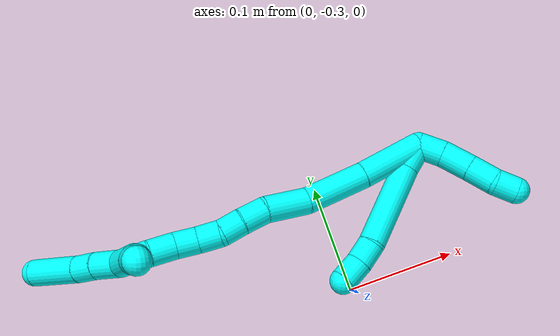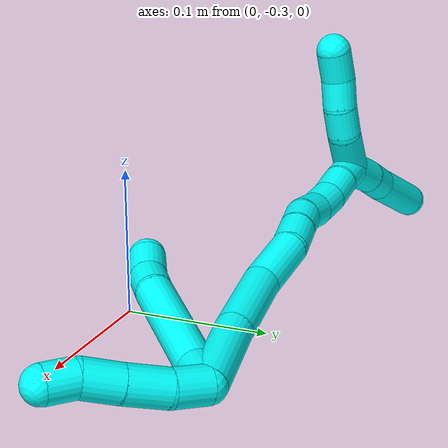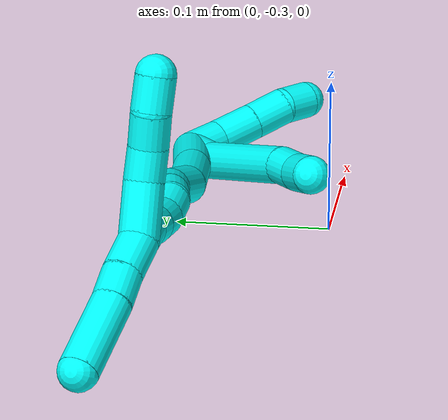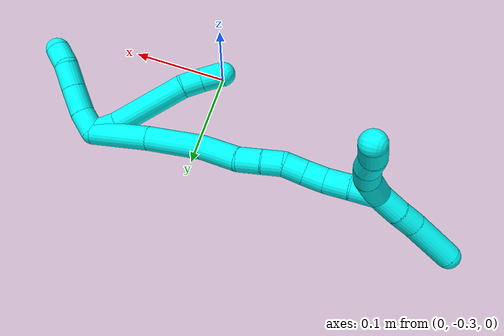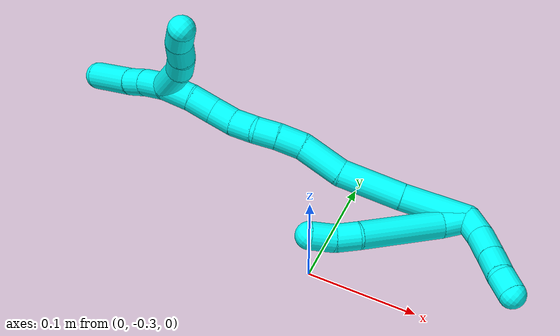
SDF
<sdf version="1.7">
 <world name="default">
  <model name="3">
   <static>0</static>
   <link name="3">
    <collision name="collision-cylinder-e_1_2_8">
     <pose>-0.006609 0.007973 -0.007244 -2.30833 -0.550318 1.13572</pose>
     <geometry><cylinder><radius>0.0125</radius><length>0.025277</length></cylinder></geometry>
     <surface>
      <friction><ode><mu>1.16</mu><mu2>1.16</mu2><slip1>0</slip1><slip2>0</slip2></ode></friction>
      <contact><ode><kp>1e+06</kp><kd>1</kd><max_vel>0</max_vel><min_depth>0.001</min_depth></ode></contact>
     </surface>
    </collision>
    <visual name="visual-cylinder-e_1_2_8">
     <pose>-0.006609 0.007973 -0.007244 -2.30833 -0.550318 1.13572</pose>
     <geometry><cylinder><radius>0.0125</radius><length>0.025277</length></cylinder></geometry>
     <material><ambient>0.003922 1 0.996078 1</ambient></material>
    </visual>
    <collision name="collision-cylinder-e_2_8_9">
     <pose>-0.025797 0.046115 -0.037785 -2.22837 -0.318727 0.632417</pose>
     <geometry><cylinder><radius>0.0125</radius><length>0.080277</length></cylinder></geometry>
     <surface>
      <friction><ode><mu>1.16</mu><mu2>1.16</mu2><slip1>0</slip1><slip2>0</slip2></ode></friction>
      <contact><ode><kp>1e+06</kp><kd>1</kd><max_vel>0</max_vel><min_depth>0.001</min_depth></ode></contact>
     </surface>
    </collision>
    <visual name="visual-cylinder-e_2_8_9">
     <pose>-0.025797 0.046115 -0.037785 -2.22837 -0.318727 0.632417</pose>
     <geometry><cylinder><radius>0.0125</radius><length>0.080277</length></cylinder></geometry>
     <material><ambient>0.003922 1 0.996078 1</ambient></material>
    </visual>
    <collision name="collision-cylinder-e_3_9_10">
     <pose>-0.043332 0.082918 -0.06807 -2.38215 -0.47523 1.09089</pose>
     <geometry><cylinder><radius>0.0125</radius><length>0.021672</length></cylinder></geometry>
     <surface>
      <friction><ode><mu>1.16</mu><mu2>1.16</mu2><slip1>0</slip1><slip2>0</slip2></ode></friction>
      <contact><ode><kp>1e+06</kp><kd>1</kd><max_vel>0</max_vel><min_depth>0.001</min_depth></ode></contact>
     </surface>
    </collision>
    <visual name="visual-cylinder-e_3_9_10">
     <pose>-0.043332 0.082918 -0.06807 -2.38215 -0.47523 1.09089</pose>
     <geometry><cylinder><radius>0.0125</radius><length>0.021672</length></cylinder></geometry>
     <material><ambient>0.003922 1 0.996078 1</ambient></material>
    </visual>
    <collision name="collision-cylinder-e_4_10_6">
     <pose>-0.051584 0.095881 -0.083932 -2.52212 -0.293426 0.865149</pose>
     <geometry><cylinder><radius>0.0125</radius><length>0.022774</length></cylinder></geometry>
     <surface>
      <friction><ode><mu>1.16</mu><mu2>1.16</mu2><slip1>0</slip1><slip2>0</slip2></ode></friction>
      <contact><ode><kp>1e+06</kp><kd>1</kd><max_vel>0</max_vel><min_depth>0.001</min_depth></ode></contact>
     </surface>
    </collision>
    <visual name="visual-cylinder-e_4_10_6">
     <pose>-0.051584 0.095881 -0.083932 -2.52212 -0.293426 0.865149</pose>
     <geometry><cylinder><radius>0.0125</radius><length>0.022774</length></cylinder></geometry>
     <material><ambient>0.003922 1 0.996078 1</ambient></material>
    </visual>
    <collision name="collision-cylinder-e_1_2_11">
     <pose>0.002379 0.007322 0.009361 -0.663735 0.197558 -0.068277</pose>
     <geometry><cylinder><radius>0.0125</radius><length>0.02424</length></cylinder></geometry>
     <surface>
      <friction><ode><mu>1.16</mu><mu2>1.16</mu2><slip1>0</slip1><slip2>0</slip2></ode></friction>
      <contact><ode><kp>1e+06</kp><kd>1</kd><max_vel>0</max_vel><min_depth>0.001</min_depth></ode></contact>
     </surface>
    </collision>
    <visual name="visual-cylinder-e_1_2_11">
     <pose>0.002379 0.007322 0.009361 -0.663735 0.197558 -0.068277</pose>
     <geometry><cylinder><radius>0.0125</radius><length>0.02424</length></cylinder></geometry>
     <material><ambient>0.003922 1 0.996078 1</ambient></material>
    </visual>
    <collision name="collision-cylinder-e_2_11_12">
     <pose>0.007788 0.025454 0.027699 -0.877891 0.212373 -0.100001</pose>
     <geometry><cylinder><radius>0.0125</radius><length>0.02875</length></cylinder></geometry>
     <surface>
      <friction><ode><mu>1.16</mu><mu2>1.16</mu2><slip1>0</slip1><slip2>0</slip2></ode></friction>
      <contact><ode><kp>1e+06</kp><kd>1</kd><max_vel>0</max_vel><min_depth>0.001</min_depth></ode></contact>
     </surface>
    </collision>
    <visual name="visual-cylinder-e_2_11_12">
     <pose>0.007788 0.025454 0.027699 -0.877891 0.212373 -0.100001</pose>
     <geometry><cylinder><radius>0.0125</radius><length>0.02875</length></cylinder></geometry>
     <material><ambient>0.003922 1 0.996078 1</ambient></material>
    </visual>
    <collision name="collision-cylinder-e_3_12_13">
     <pose>0.013771 0.046483 0.044359 -0.925931 0.227055 -0.113701</pose>
     <geometry><cylinder><radius>0.0125</radius><length>0.026242</length></cylinder></geometry>
     <surface>
      <friction><ode><mu>1.16</mu><mu2>1.16</mu2><slip1>0</slip1><slip2>0</slip2></ode></friction>
      <contact><ode><kp>1e+06</kp><kd>1</kd><max_vel>0</max_vel><min_depth>0.001</min_depth></ode></contact>
     </surface>
    </collision>
    <visual name="visual-cylinder-e_3_12_13">
     <pose>0.013771 0.046483 0.044359 -0.925931 0.227055 -0.113701</pose>
     <geometry><cylinder><radius>0.0125</radius><length>0.026242</length></cylinder></geometry>
     <material><ambient>0.003922 1 0.996078 1</ambient></material>
    </visual>
    <collision name="collision-cylinder-e_4_13_5">
     <pose>0.017594 0.062745 0.060442 -0.623853 0.083767 -0.027025</pose>
     <geometry><cylinder><radius>0.0125</radius><length>0.020768</length></cylinder></geometry>
     <surface>
      <friction><ode><mu>1.16</mu><mu2>1.16</mu2><slip1>0</slip1><slip2>0</slip2></ode></friction>
      <contact><ode><kp>1e+06</kp><kd>1</kd><max_vel>0</max_vel><min_depth>0.001</min_depth></ode></contact>
     </surface>
    </collision>
    <visual name="visual-cylinder-e_4_13_5">
     <pose>0.017594 0.062745 0.060442 -0.623853 0.083767 -0.027025</pose>
     <geometry><cylinder><radius>0.0125</radius><length>0.020768</length></cylinder></geometry>
     <material><ambient>0.003922 1 0.996078 1</ambient></material>
    </visual>
    <collision name="collision-cylinder-e_1_2_14">
     <pose>-0.009963 0.007303 -0.027995 -2.8864 -0.331655 1.83358</pose>
     <geometry><cylinder><radius>0.0125</radius><length>0.061199</length></cylinder></geometry>
     <surface>
      <friction><ode><mu>1.16</mu><mu2>1.16</mu2><slip1>0</slip1><slip2>0</slip2></ode></friction>
      <contact><ode><kp>1e+06</kp><kd>1</kd><max_vel>0</max_vel><min_depth>0.001</min_depth></ode></contact>
     </surface>
    </collision>
    <visual name="visual-cylinder-e_1_2_14">
     <pose>-0.009963 0.007303 -0.027995 -2.8864 -0.331655 1.83358</pose>
     <geometry><cylinder><radius>0.0125</radius><length>0.061199</length></cylinder></geometry>
     <material><ambient>0.003922 1 0.996078 1</ambient></material>
    </visual>
    <collision name="collision-cylinder-e_2_14_15">
     <pose>-0.028705 0.020057 -0.083361 -2.94502 -0.304737 1.99997</pose>
     <geometry><cylinder><radius>0.0125</radius><length>0.058513</length></cylinder></geometry>
     <surface>
      <friction><ode><mu>1.16</mu><mu2>1.16</mu2><slip1>0</slip1><slip2>0</slip2></ode></friction>
      <contact><ode><kp>1e+06</kp><kd>1</kd><max_vel>0</max_vel><min_depth>0.001</min_depth></ode></contact>
     </surface>
    </collision>
    <visual name="visual-cylinder-e_2_14_15">
     <pose>-0.028705 0.020057 -0.083361 -2.94502 -0.304737 1.99997</pose>
     <geometry><cylinder><radius>0.0125</radius><length>0.058513</length></cylinder></geometry>
     <material><ambient>0.003922 1 0.996078 1</ambient></material>
    </visual>
    <collision name="collision-cylinder-e_3_15_16">
     <pose>-0.039766 0.026509 -0.13119 -3.09268 -0.110992 2.31201</pose>
     <geometry><cylinder><radius>0.0125</radius><length>0.041217</length></cylinder></geometry>
     <surface>
      <friction><ode><mu>1.16</mu><mu2>1.16</mu2><slip1>0</slip1><slip2>0</slip2></ode></friction>
      <contact><ode><kp>1e+06</kp><kd>1</kd><max_vel>0</max_vel><min_depth>0.001</min_depth></ode></contact>
     </surface>
    </collision>
    <visual name="visual-cylinder-e_3_15_16">
     <pose>-0.039766 0.026509 -0.13119 -3.09268 -0.110992 2.31201</pose>
     <geometry><cylinder><radius>0.0125</radius><length>0.041217</length></cylinder></geometry>
     <material><ambient>0.003922 1 0.996078 1</ambient></material>
    </visual>
    <collision name="collision-cylinder-e_4_16_17">
     <pose>-0.045205 0.03055 -0.16302 -2.8805 -0.261927 1.57403</pose>
     <geometry><cylinder><radius>0.0125</radius><length>0.024374</length></cylinder></geometry>
     <surface>
      <friction><ode><mu>1.16</mu><mu2>1.16</mu2><slip1>0</slip1><slip2>0</slip2></ode></friction>
      <contact><ode><kp>1e+06</kp><kd>1</kd><max_vel>0</max_vel><min_depth>0.001</min_depth></ode></contact>
     </surface>
    </collision>
    <visual name="visual-cylinder-e_4_16_17">
     <pose>-0.045205 0.03055 -0.16302 -2.8805 -0.261927 1.57403</pose>
     <geometry><cylinder><radius>0.0125</radius><length>0.024374</length></cylinder></geometry>
     <material><ambient>0.003922 1 0.996078 1</ambient></material>
    </visual>
    <collision name="collision-cylinder-e_5_17_18">
     <pose>-0.052059 0.036181 -0.183721 -2.87046 -0.36491 1.86836</pose>
     <geometry><cylinder><radius>0.0125</radius><length>0.02073</length></cylinder></geometry>
     <surface>
      <friction><ode><mu>1.16</mu><mu2>1.16</mu2><slip1>0</slip1><slip2>0</slip2></ode></friction>
      <contact><ode><kp>1e+06</kp><kd>1</kd><max_vel>0</max_vel><min_depth>0.001</min_depth></ode></contact>
     </surface>
    </collision>
    <visual name="visual-cylinder-e_5_17_18">
     <pose>-0.052059 0.036181 -0.183721 -2.87046 -0.36491 1.86836</pose>
     <geometry><cylinder><radius>0.0125</radius><length>0.02073</length></cylinder></geometry>
     <material><ambient>0.003922 1 0.996078 1</ambient></material>
    </visual>
    <collision name="collision-cylinder-e_6_18_19">
     <pose>-0.060925 0.038229 -0.202687 3.08504 -0.491477 -2.917</pose>
     <geometry><cylinder><radius>0.0125</radius><length>0.021896</length></cylinder></geometry>
     <surface>
      <friction><ode><mu>1.16</mu><mu2>1.16</mu2><slip1>0</slip1><slip2>0</slip2></ode></friction>
      <contact><ode><kp>1e+06</kp><kd>1</kd><max_vel>0</max_vel><min_depth>0.001</min_depth></ode></contact>
     </surface>
    </collision>
    <visual name="visual-cylinder-e_6_18_19">
     <pose>-0.060925 0.038229 -0.202687 3.08504 -0.491477 -2.917</pose>
     <geometry><cylinder><radius>0.0125</radius><length>0.021896</length></cylinder></geometry>
     <material><ambient>0.003922 1 0.996078 1</ambient></material>
    </visual>
    <collision name="collision-cylinder-e_7_19_20">
     <pose>-0.068959 0.03764 -0.222864 3.13749 -0.265613 -3.11091</pose>
     <geometry><cylinder><radius>0.0125</radius><length>0.021848</length></cylinder></geometry>
     <surface>
      <friction><ode><mu>1.16</mu><mu2>1.16</mu2><slip1>0</slip1><slip2>0</slip2></ode></friction>
      <contact><ode><kp>1e+06</kp><kd>1</kd><max_vel>0</max_vel><min_depth>0.001</min_depth></ode></contact>
     </surface>
    </collision>
    <visual name="visual-cylinder-e_7_19_20">
     <pose>-0.068959 0.03764 -0.222864 3.13749 -0.265613 -3.11091</pose>
     <geometry><cylinder><radius>0.0125</radius><length>0.021848</length></cylinder></geometry>
     <material><ambient>0.003922 1 0.996078 1</ambient></material>
    </visual>
    <collision name="collision-cylinder-e_8_20_21">
     <pose>-0.073979 0.038815 -0.245114 -3.03798 -0.18085 2.10262</pose>
     <geometry><cylinder><radius>0.0125</radius><length>0.023935</length></cylinder></geometry>
     <surface>
      <friction><ode><mu>1.16</mu><mu2>1.16</mu2><slip1>0</slip1><slip2>0</slip2></ode></friction>
      <contact><ode><kp>1e+06</kp><kd>1</kd><max_vel>0</max_vel><min_depth>0.001</min_depth></ode></contact>
     </surface>
    </collision>
    <visual name="visual-cylinder-e_8_20_21">
     <pose>-0.073979 0.038815 -0.245114 -3.03798 -0.18085 2.10262</pose>
     <geometry><cylinder><radius>0.0125</radius><length>0.023935</length></cylinder></geometry>
     <material><ambient>0.003922 1 0.996078 1</ambient></material>
    </visual>
    <collision name="collision-cylinder-e_9_21_1">
     <pose>-0.080393 0.041157 -0.269206 -3.05102 -0.330163 2.6104</pose>
     <geometry><cylinder><radius>0.0125</radius><length>0.026287</length></cylinder></geometry>
     <surface>
      <friction><ode><mu>1.16</mu><mu2>1.16</mu2><slip1>0</slip1><slip2>0</slip2></ode></friction>
      <contact><ode><kp>1e+06</kp><kd>1</kd><max_vel>0</max_vel><min_depth>0.001</min_depth></ode></contact>
     </surface>
    </collision>
    <visual name="visual-cylinder-e_9_21_1">
     <pose>-0.080393 0.041157 -0.269206 -3.05102 -0.330163 2.6104</pose>
     <geometry><cylinder><radius>0.0125</radius><length>0.026287</length></cylinder></geometry>
     <material><ambient>0.003922 1 0.996078 1</ambient></material>
    </visual>
    <collision name="collision-cylinder-e_1_1_22">
     <pose>-0.068252 0.048252 -0.279663 -1.25883 1.20548 -0.929107</pose>
     <geometry><cylinder><radius>0.0125</radius><length>0.035122</length></cylinder></geometry>
     <surface>
      <friction><ode><mu>1.16</mu><mu2>1.16</mu2><slip1>0</slip1><slip2>0</slip2></ode></friction>
      <contact><ode><kp>1e+06</kp><kd>1</kd><max_vel>0</max_vel><min_depth>0.001</min_depth></ode></contact>
     </surface>
    </collision>
    <visual name="visual-cylinder-e_1_1_22">
     <pose>-0.068252 0.048252 -0.279663 -1.25883 1.20548 -0.929107</pose>
     <geometry><cylinder><radius>0.0125</radius><length>0.035122</length></cylinder></geometry>
     <material><ambient>0.003922 1 0.996078 1</ambient></material>
    </visual>
    <collision name="collision-cylinder-e_2_22_23">
     <pose>-0.042576 0.059123 -0.27941 -1.89979 1.06165 -1.37448</pose>
     <geometry><cylinder><radius>0.0125</radius><length>0.021242</length></cylinder></geometry>
     <surface>
      <friction><ode><mu>1.16</mu><mu2>1.16</mu2><slip1>0</slip1><slip2>0</slip2></ode></friction>
      <contact><ode><kp>1e+06</kp><kd>1</kd><max_vel>0</max_vel><min_depth>0.001</min_depth></ode></contact>
     </surface>
    </collision>
    <visual name="visual-cylinder-e_2_22_23">
     <pose>-0.042576 0.059123 -0.27941 -1.89979 1.06165 -1.37448</pose>
     <geometry><cylinder><radius>0.0125</radius><length>0.021242</length></cylinder></geometry>
     <material><ambient>0.003922 1 0.996078 1</ambient></material>
    </visual>
    <collision name="collision-cylinder-e_3_23_24">
     <pose>-0.024574 0.069046 -0.284947 -2.22649 0.942695 -1.60524</pose>
     <geometry><cylinder><radius>0.0125</radius><length>0.021573</length></cylinder></geometry>
     <surface>
      <friction><ode><mu>1.16</mu><mu2>1.16</mu2><slip1>0</slip1><slip2>0</slip2></ode></friction>
      <contact><ode><kp>1e+06</kp><kd>1</kd><max_vel>0</max_vel><min_depth>0.001</min_depth></ode></contact>
     </surface>
    </collision>
    <visual name="visual-cylinder-e_3_23_24">
     <pose>-0.024574 0.069046 -0.284947 -2.22649 0.942695 -1.60524</pose>
     <geometry><cylinder><radius>0.0125</radius><length>0.021573</length></cylinder></geometry>
     <material><ambient>0.003922 1 0.996078 1</ambient></material>
    </visual>
    <collision name="collision-cylinder-e_4_24_4">
     <pose>-0.006169 0.079143 -0.290326 -1.86074 1.07019 -1.34393</pose>
     <geometry><cylinder><radius>0.0125</radius><length>0.022064</length></cylinder></geometry>
     <surface>
      <friction><ode><mu>1.16</mu><mu2>1.16</mu2><slip1>0</slip1><slip2>0</slip2></ode></friction>
      <contact><ode><kp>1e+06</kp><kd>1</kd><max_vel>0</max_vel><min_depth>0.001</min_depth></ode></contact>
     </surface>
    </collision>
    <visual name="visual-cylinder-e_4_24_4">
     <pose>-0.006169 0.079143 -0.290326 -1.86074 1.07019 -1.34393</pose>
     <geometry><cylinder><radius>0.0125</radius><length>0.022064</length></cylinder></geometry>
     <material><ambient>0.003922 1 0.996078 1</ambient></material>
    </visual>
    <collision name="collision-cylinder-e_1_1_25">
     <pose>-0.093659 0.037501 -0.29035 2.64206 -0.734071 -1.96996</pose>
     <geometry><cylinder><radius>0.0125</radius><length>0.026886</length></cylinder></geometry>
     <surface>
      <friction><ode><mu>1.16</mu><mu2>1.16</mu2><slip1>0</slip1><slip2>0</slip2></ode></friction>
      <contact><ode><kp>1e+06</kp><kd>1</kd><max_vel>0</max_vel><min_depth>0.001</min_depth></ode></contact>
     </surface>
    </collision>
    <visual name="visual-cylinder-e_1_1_25">
     <pose>-0.093659 0.037501 -0.29035 2.64206 -0.734071 -1.96996</pose>
     <geometry><cylinder><radius>0.0125</radius><length>0.026886</length></cylinder></geometry>
     <material><ambient>0.003922 1 0.996078 1</ambient></material>
    </visual>
    <collision name="collision-cylinder-e_2_25_26">
     <pose>-0.110546 0.029525 -0.305717 2.69112 -0.821111 -2.17255</pose>
     <geometry><cylinder><radius>0.0125</radius><length>0.021537</length></cylinder></geometry>
     <surface>
      <friction><ode><mu>1.16</mu><mu2>1.16</mu2><slip1>0</slip1><slip2>0</slip2></ode></friction>
      <contact><ode><kp>1e+06</kp><kd>1</kd><max_vel>0</max_vel><min_depth>0.001</min_depth></ode></contact>
     </surface>
    </collision>
    <visual name="visual-cylinder-e_2_25_26">
     <pose>-0.110546 0.029525 -0.305717 2.69112 -0.821111 -2.17255</pose>
     <geometry><cylinder><radius>0.0125</radius><length>0.021537</length></cylinder></geometry>
     <material><ambient>0.003922 1 0.996078 1</ambient></material>
    </visual>
    <collision name="collision-cylinder-e_3_26_3">
     <pose>-0.135961 0.016901 -0.328715 2.61959 -0.747637 -1.946</pose>
     <geometry><cylinder><radius>0.0125</radius><length>0.051577</length></cylinder></geometry>
     <surface>
      <friction><ode><mu>1.16</mu><mu2>1.16</mu2><slip1>0</slip1><slip2>0</slip2></ode></friction>
      <contact><ode><kp>1e+06</kp><kd>1</kd><max_vel>0</max_vel><min_depth>0.001</min_depth></ode></contact>
     </surface>
    </collision>
    <visual name="visual-cylinder-e_3_26_3">
     <pose>-0.135961 0.016901 -0.328715 2.61959 -0.747637 -1.946</pose>
     <geometry><cylinder><radius>0.0125</radius><length>0.051577</length></cylinder></geometry>
     <material><ambient>0.003922 1 0.996078 1</ambient></material>
    </visual>
    <collision name="collision-sphere-3">
     <pose>-0.153495 0.007472 -0.345107 0 -0 0</pose>
     <geometry><sphere><radius>0.0125</radius></sphere></geometry>
     <surface>
      <friction><ode><mu>1.16</mu><mu2>1.16</mu2><slip1>0</slip1><slip2>0</slip2></ode></friction>
      <contact><ode><kp>1e+06</kp><kd>1</kd><max_vel>0</max_vel><min_depth>0.001</min_depth></ode></contact>
     </surface>
    </collision>
    <visual name="visual-sphere-3">
     <pose>-0.153495 0.007472 -0.345107 0 -0 0</pose>
     <geometry><sphere><radius>0.0125</radius></sphere></geometry>
     <material><ambient>0.003922 1 0.996078 1</ambient></material>
    </visual>
    <collision name="collision-sphere-26">
     <pose>-0.118428 0.02633 -0.312322 0 -0 0</pose>
     <geometry><sphere><radius>0.0125</radius></sphere></geometry>
     <surface>
      <friction><ode><mu>1.16</mu><mu2>1.16</mu2><slip1>0</slip1><slip2>0</slip2></ode></friction>
      <contact><ode><kp>1e+06</kp><kd>1</kd><max_vel>0</max_vel><min_depth>0.001</min_depth></ode></contact>
     </surface>
    </collision>
    <visual name="visual-sphere-26">
     <pose>-0.118428 0.02633 -0.312322 0 -0 0</pose>
     <geometry><sphere><radius>0.0125</radius></sphere></geometry>
     <material><ambient>0.003922 1 0.996078 1</ambient></material>
    </visual>
    <collision name="collision-sphere-25">
     <pose>-0.102665 0.03272 -0.299111 0 -0 0</pose>
     <geometry><sphere><radius>0.0125</radius></sphere></geometry>
     <surface>
      <friction><ode><mu>1.16</mu><mu2>1.16</mu2><slip1>0</slip1><slip2>0</slip2></ode></friction>
      <contact><ode><kp>1e+06</kp><kd>1</kd><max_vel>0</max_vel><min_depth>0.001</min_depth></ode></contact>
     </surface>
    </collision>
    <visual name="visual-sphere-25">
     <pose>-0.102665 0.03272 -0.299111 0 -0 0</pose>
     <geometry><sphere><radius>0.0125</radius></sphere></geometry>
     <material><ambient>0.003922 1 0.996078 1</ambient></material>
    </visual>
    <collision name="collision-sphere-4">
     <pose>0.003509 0.084217 -0.291839 0 -0 0</pose>
     <geometry><sphere><radius>0.0125</radius></sphere></geometry>
     <surface>
      <friction><ode><mu>1.16</mu><mu2>1.16</mu2><slip1>0</slip1><slip2>0</slip2></ode></friction>
      <contact><ode><kp>1e+06</kp><kd>1</kd><max_vel>0</max_vel><min_depth>0.001</min_depth></ode></contact>
     </surface>
    </collision>
    <visual name="visual-sphere-4">
     <pose>0.003509 0.084217 -0.291839 0 -0 0</pose>
     <geometry><sphere><radius>0.0125</radius></sphere></geometry>
     <material><ambient>0.003922 1 0.996078 1</ambient></material>
    </visual>
    <collision name="collision-sphere-24">
     <pose>-0.015847 0.074069 -0.288812 0 -0 0</pose>
     <geometry><sphere><radius>0.0125</radius></sphere></geometry>
     <surface>
      <friction><ode><mu>1.16</mu><mu2>1.16</mu2><slip1>0</slip1><slip2>0</slip2></ode></friction>
      <contact><ode><kp>1e+06</kp><kd>1</kd><max_vel>0</max_vel><min_depth>0.001</min_depth></ode></contact>
     </surface>
    </collision>
    <visual name="visual-sphere-24">
     <pose>-0.015847 0.074069 -0.288812 0 -0 0</pose>
     <geometry><sphere><radius>0.0125</radius></sphere></geometry>
     <material><ambient>0.003922 1 0.996078 1</ambient></material>
    </visual>
    <collision name="collision-sphere-23">
     <pose>-0.033302 0.064022 -0.281083 0 -0 0</pose>
     <geometry><sphere><radius>0.0125</radius></sphere></geometry>
     <surface>
      <friction><ode><mu>1.16</mu><mu2>1.16</mu2><slip1>0</slip1><slip2>0</slip2></ode></friction>
      <contact><ode><kp>1e+06</kp><kd>1</kd><max_vel>0</max_vel><min_depth>0.001</min_depth></ode></contact>
     </surface>
    </collision>
    <visual name="visual-sphere-23">
     <pose>-0.033302 0.064022 -0.281083 0 -0 0</pose>
     <geometry><sphere><radius>0.0125</radius></sphere></geometry>
     <material><ambient>0.003922 1 0.996078 1</ambient></material>
    </visual>
    <collision name="collision-sphere-22">
     <pose>-0.05185 0.054223 -0.277738 0 -0 0</pose>
     <geometry><sphere><radius>0.0125</radius></sphere></geometry>
     <surface>
      <friction><ode><mu>1.16</mu><mu2>1.16</mu2><slip1>0</slip1><slip2>0</slip2></ode></friction>
      <contact><ode><kp>1e+06</kp><kd>1</kd><max_vel>0</max_vel><min_depth>0.001</min_depth></ode></contact>
     </surface>
    </collision>
    <visual name="visual-sphere-22">
     <pose>-0.05185 0.054223 -0.277738 0 -0 0</pose>
     <geometry><sphere><radius>0.0125</radius></sphere></geometry>
     <material><ambient>0.003922 1 0.996078 1</ambient></material>
    </visual>
    <collision name="collision-sphere-1">
     <pose>-0.084654 0.042282 -0.281589 0 -0 0</pose>
     <geometry><sphere><radius>0.0125</radius></sphere></geometry>
     <surface>
      <friction><ode><mu>1.16</mu><mu2>1.16</mu2><slip1>0</slip1><slip2>0</slip2></ode></friction>
      <contact><ode><kp>1e+06</kp><kd>1</kd><max_vel>0</max_vel><min_depth>0.001</min_depth></ode></contact>
     </surface>
    </collision>
    <visual name="visual-sphere-1">
     <pose>-0.084654 0.042282 -0.281589 0 -0 0</pose>
     <geometry><sphere><radius>0.0125</radius></sphere></geometry>
     <material><ambient>0.003922 1 0.996078 1</ambient></material>
    </visual>
    <collision name="collision-sphere-21">
     <pose>-0.076132 0.040032 -0.256824 0 -0 0</pose>
     <geometry><sphere><radius>0.0125</radius></sphere></geometry>
     <surface>
      <friction><ode><mu>1.16</mu><mu2>1.16</mu2><slip1>0</slip1><slip2>0</slip2></ode></friction>
      <contact><ode><kp>1e+06</kp><kd>1</kd><max_vel>0</max_vel><min_depth>0.001</min_depth></ode></contact>
     </surface>
    </collision>
    <visual name="visual-sphere-21">
     <pose>-0.076132 0.040032 -0.256824 0 -0 0</pose>
     <geometry><sphere><radius>0.0125</radius></sphere></geometry>
     <material><ambient>0.003922 1 0.996078 1</ambient></material>
    </visual>
    <collision name="collision-sphere-11">
     <pose>0.004758 0.014643 0.018723 0 -0 0</pose>
     <geometry><sphere><radius>0.0125</radius></sphere></geometry>
     <surface>
      <friction><ode><mu>1.16</mu><mu2>1.16</mu2><slip1>0</slip1><slip2>0</slip2></ode></friction>
      <contact><ode><kp>1e+06</kp><kd>1</kd><max_vel>0</max_vel><min_depth>0.001</min_depth></ode></contact>
     </surface>
    </collision>
    <visual name="visual-sphere-11">
     <pose>0.004758 0.014643 0.018723 0 -0 0</pose>
     <geometry><sphere><radius>0.0125</radius></sphere></geometry>
     <material><ambient>0.003922 1 0.996078 1</ambient></material>
    </visual>
    <collision name="collision-sphere-6">
     <pose>-0.054877 0.102209 -0.092807 0 -0 0</pose>
     <geometry><sphere><radius>0.0125</radius></sphere></geometry>
     <surface>
      <friction><ode><mu>1.16</mu><mu2>1.16</mu2><slip1>0</slip1><slip2>0</slip2></ode></friction>
      <contact><ode><kp>1e+06</kp><kd>1</kd><max_vel>0</max_vel><min_depth>0.001</min_depth></ode></contact>
     </surface>
    </collision>
    <visual name="visual-sphere-6">
     <pose>-0.054877 0.102209 -0.092807 0 -0 0</pose>
     <geometry><sphere><radius>0.0125</radius></sphere></geometry>
     <material><ambient>0.003922 1 0.996078 1</ambient></material>
    </visual>
    <collision name="collision-sphere-10">
     <pose>-0.04829 0.089552 -0.075058 0 -0 0</pose>
     <geometry><sphere><radius>0.0125</radius></sphere></geometry>
     <surface>
      <friction><ode><mu>1.16</mu><mu2>1.16</mu2><slip1>0</slip1><slip2>0</slip2></ode></friction>
      <contact><ode><kp>1e+06</kp><kd>1</kd><max_vel>0</max_vel><min_depth>0.001</min_depth></ode></contact>
     </surface>
    </collision>
    <visual name="visual-sphere-10">
     <pose>-0.04829 0.089552 -0.075058 0 -0 0</pose>
     <geometry><sphere><radius>0.0125</radius></sphere></geometry>
     <material><ambient>0.003922 1 0.996078 1</ambient></material>
    </visual>
    <collision name="collision-sphere-9">
     <pose>-0.038374 0.076284 -0.061082 0 -0 0</pose>
     <geometry><sphere><radius>0.0125</radius></sphere></geometry>
     <surface>
      <friction><ode><mu>1.16</mu><mu2>1.16</mu2><slip1>0</slip1><slip2>0</slip2></ode></friction>
      <contact><ode><kp>1e+06</kp><kd>1</kd><max_vel>0</max_vel><min_depth>0.001</min_depth></ode></contact>
     </surface>
    </collision>
    <visual name="visual-sphere-9">
     <pose>-0.038374 0.076284 -0.061082 0 -0 0</pose>
     <geometry><sphere><radius>0.0125</radius></sphere></geometry>
     <material><ambient>0.003922 1 0.996078 1</ambient></material>
    </visual>
    <collision name="collision-sphere-2">
     <geometry><sphere><radius>0.0125</radius></sphere></geometry>
     <surface>
      <friction><ode><mu>1.16</mu><mu2>1.16</mu2><slip1>0</slip1><slip2>0</slip2></ode></friction>
      <contact><ode><kp>1e+06</kp><kd>1</kd><max_vel>0</max_vel><min_depth>0.001</min_depth></ode></contact>
     </surface>
    </collision>
    <visual name="visual-sphere-2">
     <geometry><sphere><radius>0.0125</radius></sphere></geometry>
     <material><ambient>0.003922 1 0.996078 1</ambient></material>
    </visual>
    <collision name="collision-sphere-19">
     <pose>-0.066092 0.037684 -0.212324 0 -0 0</pose>
     <geometry><sphere><radius>0.0125</radius></sphere></geometry>
     <surface>
      <friction><ode><mu>1.16</mu><mu2>1.16</mu2><slip1>0</slip1><slip2>0</slip2></ode></friction>
      <contact><ode><kp>1e+06</kp><kd>1</kd><max_vel>0</max_vel><min_depth>0.001</min_depth></ode></contact>
     </surface>
    </collision>
    <visual name="visual-sphere-19">
     <pose>-0.066092 0.037684 -0.212324 0 -0 0</pose>
     <geometry><sphere><radius>0.0125</radius></sphere></geometry>
     <material><ambient>0.003922 1 0.996078 1</ambient></material>
    </visual>
    <collision name="collision-sphere-8">
     <pose>-0.013219 0.015946 -0.014488 0 -0 0</pose>
     <geometry><sphere><radius>0.0125</radius></sphere></geometry>
     <surface>
      <friction><ode><mu>1.16</mu><mu2>1.16</mu2><slip1>0</slip1><slip2>0</slip2></ode></friction>
      <contact><ode><kp>1e+06</kp><kd>1</kd><max_vel>0</max_vel><min_depth>0.001</min_depth></ode></contact>
     </surface>
    </collision>
    <visual name="visual-sphere-8">
     <pose>-0.013219 0.015946 -0.014488 0 -0 0</pose>
     <geometry><sphere><radius>0.0125</radius></sphere></geometry>
     <material><ambient>0.003922 1 0.996078 1</ambient></material>
    </visual>
    <collision name="collision-sphere-12">
     <pose>0.010818 0.036266 0.036675 0 -0 0</pose>
     <geometry><sphere><radius>0.0125</radius></sphere></geometry>
     <surface>
      <friction><ode><mu>1.16</mu><mu2>1.16</mu2><slip1>0</slip1><slip2>0</slip2></ode></friction>
      <contact><ode><kp>1e+06</kp><kd>1</kd><max_vel>0</max_vel><min_depth>0.001</min_depth></ode></contact>
     </surface>
    </collision>
    <visual name="visual-sphere-12">
     <pose>0.010818 0.036266 0.036675 0 -0 0</pose>
     <geometry><sphere><radius>0.0125</radius></sphere></geometry>
     <material><ambient>0.003922 1 0.996078 1</ambient></material>
    </visual>
    <collision name="collision-sphere-13">
     <pose>0.016725 0.0567 0.052044 0 -0 0</pose>
     <geometry><sphere><radius>0.0125</radius></sphere></geometry>
     <surface>
      <friction><ode><mu>1.16</mu><mu2>1.16</mu2><slip1>0</slip1><slip2>0</slip2></ode></friction>
      <contact><ode><kp>1e+06</kp><kd>1</kd><max_vel>0</max_vel><min_depth>0.001</min_depth></ode></contact>
     </surface>
    </collision>
    <visual name="visual-sphere-13">
     <pose>0.016725 0.0567 0.052044 0 -0 0</pose>
     <geometry><sphere><radius>0.0125</radius></sphere></geometry>
     <material><ambient>0.003922 1 0.996078 1</ambient></material>
    </visual>
    <collision name="collision-sphere-5">
     <pose>0.018463 0.068789 0.06884 0 -0 0</pose>
     <geometry><sphere><radius>0.0125</radius></sphere></geometry>
     <surface>
      <friction><ode><mu>1.16</mu><mu2>1.16</mu2><slip1>0</slip1><slip2>0</slip2></ode></friction>
      <contact><ode><kp>1e+06</kp><kd>1</kd><max_vel>0</max_vel><min_depth>0.001</min_depth></ode></contact>
     </surface>
    </collision>
    <visual name="visual-sphere-5">
     <pose>0.018463 0.068789 0.06884 0 -0 0</pose>
     <geometry><sphere><radius>0.0125</radius></sphere></geometry>
     <material><ambient>0.003922 1 0.996078 1</ambient></material>
    </visual>
    <collision name="collision-sphere-14">
     <pose>-0.019927 0.014607 -0.05599 0 -0 0</pose>
     <geometry><sphere><radius>0.0125</radius></sphere></geometry>
     <surface>
      <friction><ode><mu>1.16</mu><mu2>1.16</mu2><slip1>0</slip1><slip2>0</slip2></ode></friction>
      <contact><ode><kp>1e+06</kp><kd>1</kd><max_vel>0</max_vel><min_depth>0.001</min_depth></ode></contact>
     </surface>
    </collision>
    <visual name="visual-sphere-14">
     <pose>-0.019927 0.014607 -0.05599 0 -0 0</pose>
     <geometry><sphere><radius>0.0125</radius></sphere></geometry>
     <material><ambient>0.003922 1 0.996078 1</ambient></material>
    </visual>
    <collision name="collision-sphere-15">
     <pose>-0.037483 0.025508 -0.110732 0 -0 0</pose>
     <geometry><sphere><radius>0.0125</radius></sphere></geometry>
     <surface>
      <friction><ode><mu>1.16</mu><mu2>1.16</mu2><slip1>0</slip1><slip2>0</slip2></ode></friction>
      <contact><ode><kp>1e+06</kp><kd>1</kd><max_vel>0</max_vel><min_depth>0.001</min_depth></ode></contact>
     </surface>
    </collision>
    <visual name="visual-sphere-15">
     <pose>-0.037483 0.025508 -0.110732 0 -0 0</pose>
     <geometry><sphere><radius>0.0125</radius></sphere></geometry>
     <material><ambient>0.003922 1 0.996078 1</ambient></material>
    </visual>
    <collision name="collision-sphere-16">
     <pose>-0.042049 0.027511 -0.151647 0 -0 0</pose>
     <geometry><sphere><radius>0.0125</radius></sphere></geometry>
     <surface>
      <friction><ode><mu>1.16</mu><mu2>1.16</mu2><slip1>0</slip1><slip2>0</slip2></ode></friction>
      <contact><ode><kp>1e+06</kp><kd>1</kd><max_vel>0</max_vel><min_depth>0.001</min_depth></ode></contact>
     </surface>
    </collision>
    <visual name="visual-sphere-16">
     <pose>-0.042049 0.027511 -0.151647 0 -0 0</pose>
     <geometry><sphere><radius>0.0125</radius></sphere></geometry>
     <material><ambient>0.003922 1 0.996078 1</ambient></material>
    </visual>
    <collision name="collision-sphere-17">
     <pose>-0.04836 0.033588 -0.174392 0 -0 0</pose>
     <geometry><sphere><radius>0.0125</radius></sphere></geometry>
     <surface>
      <friction><ode><mu>1.16</mu><mu2>1.16</mu2><slip1>0</slip1><slip2>0</slip2></ode></friction>
      <contact><ode><kp>1e+06</kp><kd>1</kd><max_vel>0</max_vel><min_depth>0.001</min_depth></ode></contact>
     </surface>
    </collision>
    <visual name="visual-sphere-17">
     <pose>-0.04836 0.033588 -0.174392 0 -0 0</pose>
     <geometry><sphere><radius>0.0125</radius></sphere></geometry>
     <material><ambient>0.003922 1 0.996078 1</ambient></material>
    </visual>
    <collision name="collision-sphere-18">
     <pose>-0.055758 0.038775 -0.19305 0 -0 0</pose>
     <geometry><sphere><radius>0.0125</radius></sphere></geometry>
     <surface>
      <friction><ode><mu>1.16</mu><mu2>1.16</mu2><slip1>0</slip1><slip2>0</slip2></ode></friction>
      <contact><ode><kp>1e+06</kp><kd>1</kd><max_vel>0</max_vel><min_depth>0.001</min_depth></ode></contact>
     </surface>
    </collision>
    <visual name="visual-sphere-18">
     <pose>-0.055758 0.038775 -0.19305 0 -0 0</pose>
     <geometry><sphere><radius>0.0125</radius></sphere></geometry>
     <material><ambient>0.003922 1 0.996078 1</ambient></material>
    </visual>
    <collision name="collision-sphere-20">
     <pose>-0.071827 0.037597 -0.233405 0 -0 0</pose>
     <geometry><sphere><radius>0.0125</radius></sphere></geometry>
     <surface>
      <friction><ode><mu>1.16</mu><mu2>1.16</mu2><slip1>0</slip1><slip2>0</slip2></ode></friction>
      <contact><ode><kp>1e+06</kp><kd>1</kd><max_vel>0</max_vel><min_depth>0.001</min_depth></ode></contact>
     </surface>
    </collision>
    <visual name="visual-sphere-20">
     <pose>-0.071827 0.037597 -0.233405 0 -0 0</pose>
     <geometry><sphere><radius>0.0125</radius></sphere></geometry>
     <material><ambient>0.003922 1 0.996078 1</ambient></material>
    </visual>
    <inertial>
     <pose>-0.042742 0.037195 -0.139795 0 -0 0</pose>
     <mass>0.75</mass>
     <inertia>
      <ixx>7.2e-05</ixx>
      <ixy>0</ixy>
      <ixz>0</ixz>
      <iyy>0.000116</iyy>
      <iyz>0</iyz>
      <izz>-4.7e-05</izz>
     </inertia>
    </inertial>
   </link>
   <pose>0.105768 -0.194091 0.011789 2.3284 -1.00765 0.683706</pose>
  </model>
 </world>
</sdf>
